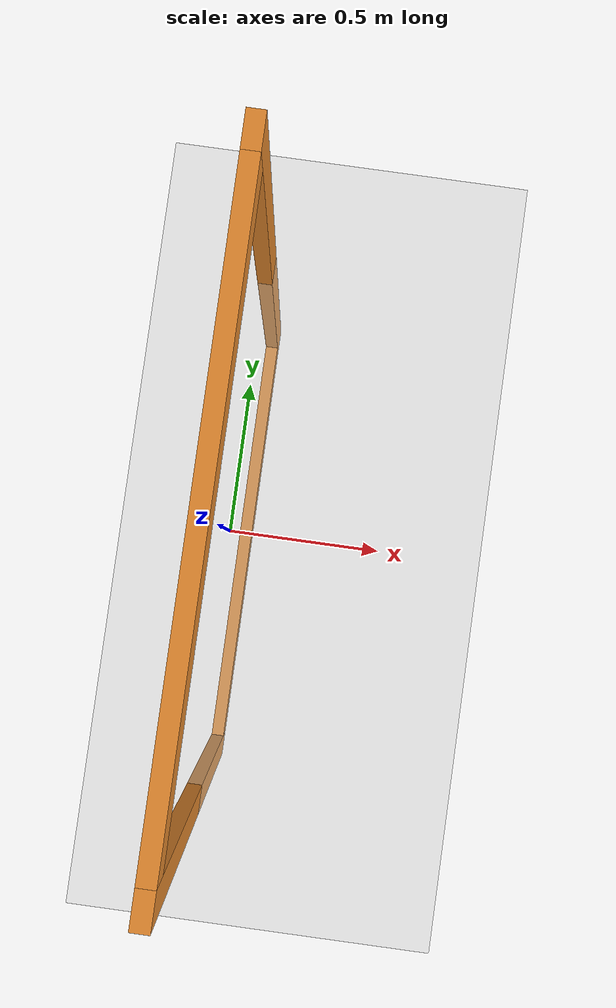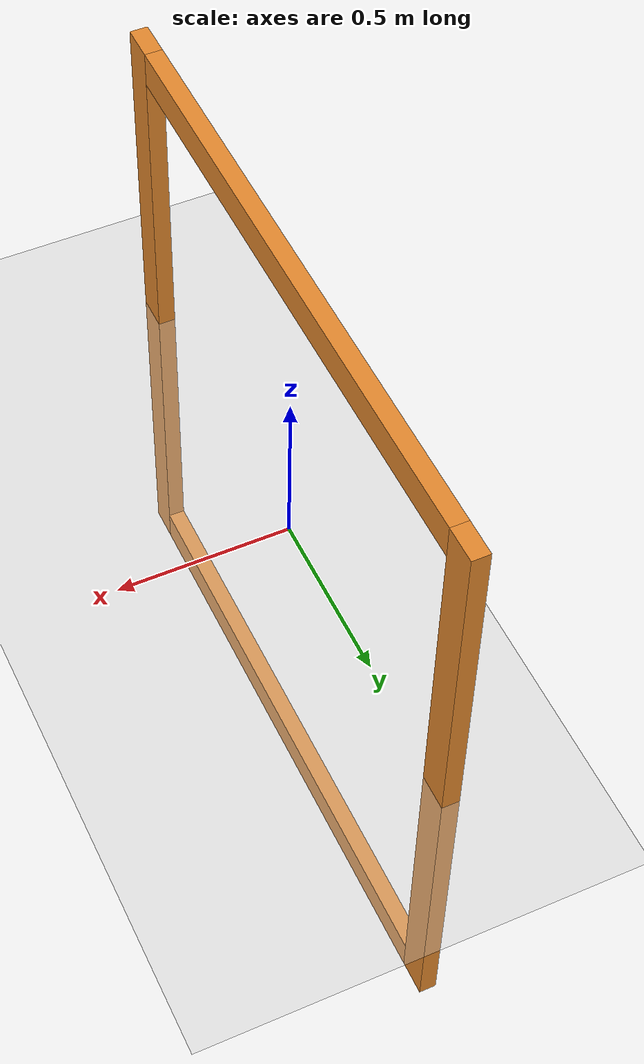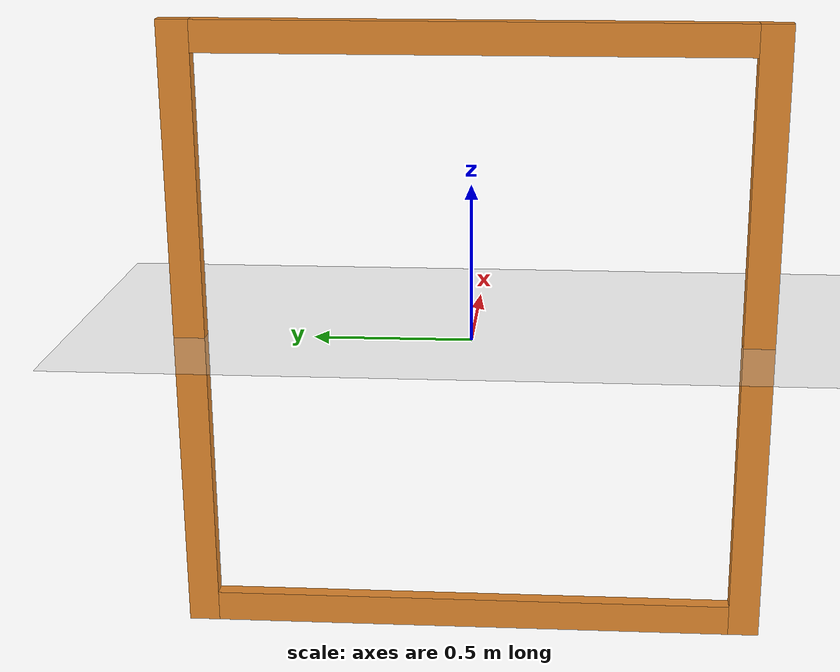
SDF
<sdf version="1.4">
 <world name="smart_drone_simple_world">
  <include><uri>model://ground_plane</uri></include>
  <include><uri>model://sun</uri></include>
  <model name="smart_drone_orange_gate11">
   <link name="left">
    <pose>0 -0.9 0 0 -0 0</pose>
    <inertial>
     <mass>1</mass>
     <inertia>
      <ixx>0.166667</ixx>
      <ixy>0</ixy>
      <ixz>0</ixz>
      <iyy>0.166667</iyy>
      <iyz>0</iyz>
      <izz>0.166667</izz>
     </inertia>
     <pose>0 -0.9 0 0 -0 0</pose>
    </inertial>
    <visual name="visual">
     <geometry><box><size>0.05 0.1 2</size></box></geometry>
     <material>
      <lighting>1</lighting>
      <script><uri>file://media/materials/scripts/gazebo.material</uri><name>Gazebo/Grey</name></script>
      <shader type="pixel"><normal_map>__default__</normal_map></shader>
      <ambient>0.9 0.54 0.18 1</ambient>
      <diffuse>0.9 0.54 0.18 1</diffuse>
      <specular>0.9 0.54 0.18 1</specular>
      <emissive>0 0 0 1</emissive>
     </material>
    </visual>
    <collision name="collision">
     <geometry><box><size>0.05 0.1 2</size></box></geometry>
     <surface>
      <friction>
       <ode><mu>1</mu><mu2>1</mu2><fdir1>0 0 0</fdir1><slip1>0</slip1><slip2>0</slip2></ode>
       <torsional>
        <coefficient>1</coefficient>
        <patch_radius>0</patch_radius>
        <surface_radius>0</surface_radius>
        <use_patch_radius>1</use_patch_radius>
        <ode><slip>0</slip></ode>
       </torsional>
      </friction>
      <bounce><restitution_coefficient>0</restitution_coefficient><threshold>1e+06</threshold></bounce>
      <contact>
       <collide_without_contact>0</collide_without_contact>
       <collide_without_contact_bitmask>1</collide_without_contact_bitmask>
       <collide_bitmask>1</collide_bitmask>
       <ode>
        <soft_cfm>0</soft_cfm>
        <soft_erp>0.2</soft_erp>
        <kp>1e+13</kp>
        <kd>1</kd>
        <max_vel>0.01</max_vel>
        <min_depth>0</min_depth>
       </ode>
       <bullet>
        <split_impulse>1</split_impulse>
        <split_impulse_penetration_threshold>-0.01</split_impulse_penetration_threshold>
        <soft_cfm>0</soft_cfm>
        <soft_erp>0.2</soft_erp>
        <kp>1e+13</kp>
        <kd>1</kd>
       </bullet>
      </contact>
     </surface>
    </collision>
   </link>
   <link name="top">
    <pose>0 0 0.95 0 -0 0</pose>
    <inertial>
     <mass>1</mass>
     <inertia>
      <ixx>0.166667</ixx>
      <ixy>0</ixy>
      <ixz>0</ixz>
      <iyy>0.166667</iyy>
      <iyz>0</iyz>
      <izz>0.166667</izz>
     </inertia>
     <pose>0 0 0.95 0 -0 0</pose>
    </inertial>
    <visual name="visual">
     <geometry><box><size>0.05 1.7 0.1</size></box></geometry>
     <material>
      <lighting>1</lighting>
      <script><uri>file://media/materials/scripts/gazebo.material</uri><name>Gazebo/Grey</name></script>
      <shader type="pixel"><normal_map>__default__</normal_map></shader>
      <ambient>0.9 0.54 0.18 1</ambient>
      <diffuse>0.9 0.54 0.18 1</diffuse>
      <specular>0.9 0.54 0.18 1</specular>
      <emissive>0 0 0 1</emissive>
     </material>
    </visual>
    <collision name="collision">
     <geometry><box><size>0.05 1.7 0.1</size></box></geometry>
     <surface>
      <friction>
       <ode><mu>1</mu><mu2>1</mu2><fdir1>0 0 0</fdir1><slip1>0</slip1><slip2>0</slip2></ode>
       <torsional>
        <coefficient>1</coefficient>
        <patch_radius>0</patch_radius>
        <surface_radius>0</surface_radius>
        <use_patch_radius>1</use_patch_radius>
        <ode><slip>0</slip></ode>
       </torsional>
      </friction>
      <bounce><restitution_coefficient>0</restitution_coefficient><threshold>1e+06</threshold></bounce>
      <contact>
       <collide_without_contact>0</collide_without_contact>
       <collide_without_contact_bitmask>1</collide_without_contact_bitmask>
       <collide_bitmask>1</collide_bitmask>
       <ode>
        <soft_cfm>0</soft_cfm>
        <soft_erp>0.2</soft_erp>
        <kp>1e+13</kp>
        <kd>1</kd>
        <max_vel>0.01</max_vel>
        <min_depth>0</min_depth>
       </ode>
       <bullet>
        <split_impulse>1</split_impulse>
        <split_impulse_penetration_threshold>-0.01</split_impulse_penetration_threshold>
        <soft_cfm>0</soft_cfm>
        <soft_erp>0.2</soft_erp>
        <kp>1e+13</kp>
        <kd>1</kd>
       </bullet>
      </contact>
     </surface>
    </collision>
   </link>
   <link name="bot">
    <pose>0 0 -0.95 0 -0 0</pose>
    <inertial>
     <mass>1</mass>
     <inertia>
      <ixx>0.166667</ixx>
      <ixy>0</ixy>
      <ixz>0</ixz>
      <iyy>0.166667</iyy>
      <iyz>0</iyz>
      <izz>0.166667</izz>
     </inertia>
     <pose>0 0 -0.95 0 -0 0</pose>
    </inertial>
    <visual name="visual">
     <geometry><box><size>0.05 1.7 0.1</size></box></geometry>
     <material>
      <lighting>1</lighting>
      <script><uri>file://media/materials/scripts/gazebo.material</uri><name>Gazebo/Grey</name></script>
      <shader type="pixel"><normal_map>__default__</normal_map></shader>
      <ambient>0.9 0.54 0.18 1</ambient>
      <diffuse>0.9 0.54 0.18 1</diffuse>
      <specular>0.9 0.54 0.18 1</specular>
      <emissive>0 0 0 1</emissive>
     </material>
    </visual>
    <collision name="collision">
     <geometry><box><size>0.05 1.7 0.1</size></box></geometry>
     <surface>
      <friction>
       <ode><mu>1</mu><mu2>1</mu2><fdir1>0 0 0</fdir1><slip1>0</slip1><slip2>0</slip2></ode>
       <torsional>
        <coefficient>1</coefficient>
        <patch_radius>0</patch_radius>
        <surface_radius>0</surface_radius>
        <use_patch_radius>1</use_patch_radius>
        <ode><slip>0</slip></ode>
       </torsional>
      </friction>
      <bounce><restitution_coefficient>0</restitution_coefficient><threshold>1e+06</threshold></bounce>
      <contact>
       <collide_without_contact>0</collide_without_contact>
       <collide_without_contact_bitmask>1</collide_without_contact_bitmask>
       <collide_bitmask>1</collide_bitmask>
       <ode>
        <soft_cfm>0</soft_cfm>
        <soft_erp>0.2</soft_erp>
        <kp>1e+13</kp>
        <kd>1</kd>
        <max_vel>0.01</max_vel>
        <min_depth>0</min_depth>
       </ode>
       <bullet>
        <split_impulse>1</split_impulse>
        <split_impulse_penetration_threshold>-0.01</split_impulse_penetration_threshold>
        <soft_cfm>0</soft_cfm>
        <soft_erp>0.2</soft_erp>
        <kp>1e+13</kp>
        <kd>1</kd>
       </bullet>
      </contact>
     </surface>
    </collision>
   </link>
   <link name="right">
    <pose>0 0.9 0 0 -0 0</pose>
    <inertial>
     <mass>1</mass>
     <inertia>
      <ixx>0.166667</ixx>
      <ixy>0</ixy>
      <ixz>0</ixz>
      <iyy>0.166667</iyy>
      <iyz>0</iyz>
      <izz>0.166667</izz>
     </inertia>
     <pose>0 0.9 0 0 -0 0</pose>
    </inertial>
    <visual name="visual">
     <geometry><box><size>0.05 0.1 2</size></box></geometry>
     <material>
      <lighting>1</lighting>
      <script><uri>file://media/materials/scripts/gazebo.material</uri><name>Gazebo/Grey</name></script>
      <shader type="pixel"><normal_map>__default__</normal_map></shader>
      <ambient>0.9 0.54 0.18 1</ambient>
      <diffuse>0.9 0.54 0.18 1</diffuse>
      <specular>0.9 0.54 0.18 1</specular>
      <emissive>0 0 0 1</emissive>
     </material>
    </visual>
    <collision name="collision">
     <geometry><box><size>0.05 0.1 2</size></box></geometry>
     <surface>
      <friction>
       <ode><mu>1</mu><mu2>1</mu2><fdir1>0 0 0</fdir1><slip1>0</slip1><slip2>0</slip2></ode>
       <torsional>
        <coefficient>1</coefficient>
        <patch_radius>0</patch_radius>
        <surface_radius>0</surface_radius>
        <use_patch_radius>1</use_patch_radius>
        <ode><slip>0</slip></ode>
       </torsional>
      </friction>
      <bounce><restitution_coefficient>0</restitution_coefficient><threshold>1e+06</threshold></bounce>
      <contact>
       <collide_without_contact>0</collide_without_contact>
       <collide_without_contact_bitmask>1</collide_without_contact_bitmask>
       <collide_bitmask>1</collide_bitmask>
       <ode>
        <soft_cfm>0</soft_cfm>
        <soft_erp>0.2</soft_erp>
        <kp>1e+13</kp>
        <kd>1</kd>
        <max_vel>0.01</max_vel>
        <min_depth>0</min_depth>
       </ode>
       <bullet>
        <split_impulse>1</split_impulse>
        <split_impulse_penetration_threshold>-0.01</split_impulse_penetration_threshold>
        <soft_cfm>0</soft_cfm>
        <soft_erp>0.2</soft_erp>
        <kp>1e+13</kp>
        <kd>1</kd>
       </bullet>
      </contact>
     </surface>
    </collision>
   </link>
   <static>1</static>
  </model>
 </world>
</sdf>
